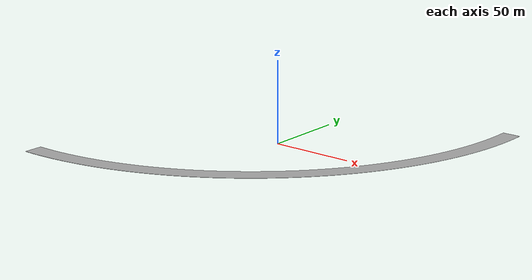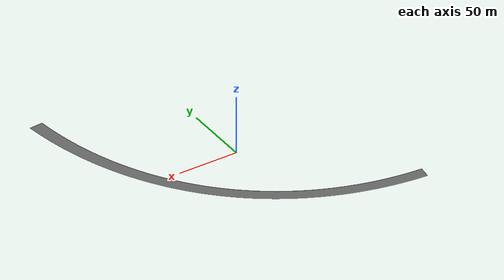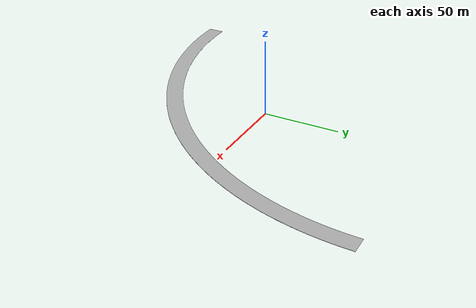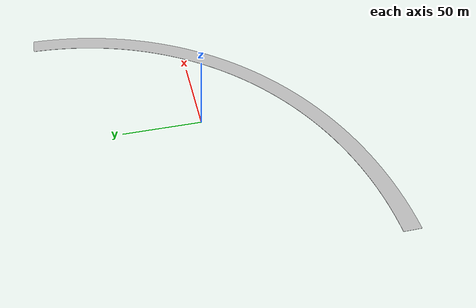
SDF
<?xml version="1.0" ?>
<sdf version="1.4">
  <model name="(DS) Right Road - 300m">
    <static>true</static>
    <link name="link">
      <inertial>
        <pose>0 0 0 0 0 0</pose>
        <mass>1</mass>
        <inertia>
          <ixx>1</ixx>
          <iyy>1</iyy>
          <izz>1</izz>
          <ixy>0</ixy>
          <ixz>0</ixz>
        </inertia>
      </inertial>
      <collision name="collision">
        <geometry>
          <mesh>
            <uri>model://ds_right_road_300m/meshes/curved_road_300m.dae</uri>
          </mesh>
        </geometry>
      </collision>

      <visual name="visual">
        <geometry>
          <mesh>
            <uri>model://ds_right_road_300m/meshes/curved_road_300m.dae</uri>
          </mesh>
        </geometry>
      </visual>
    </link>
  </model>
</sdf>
